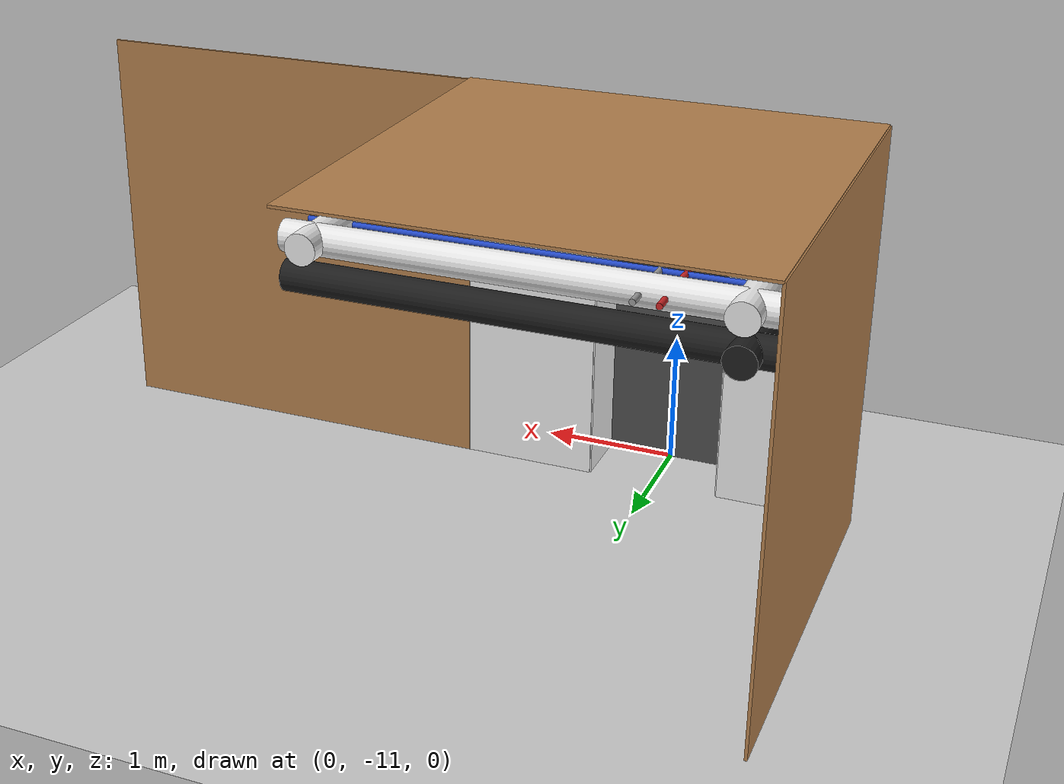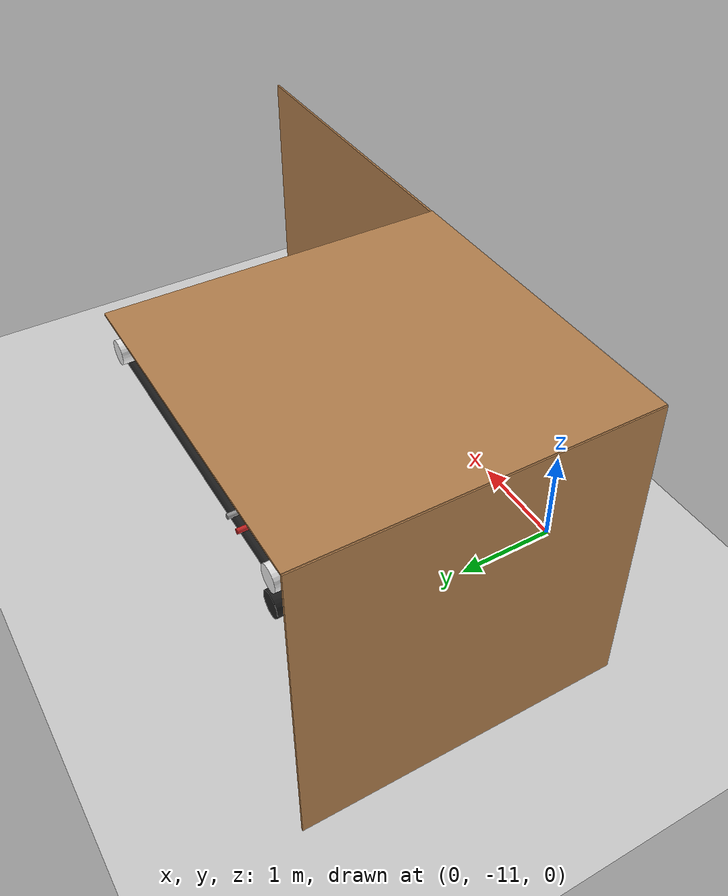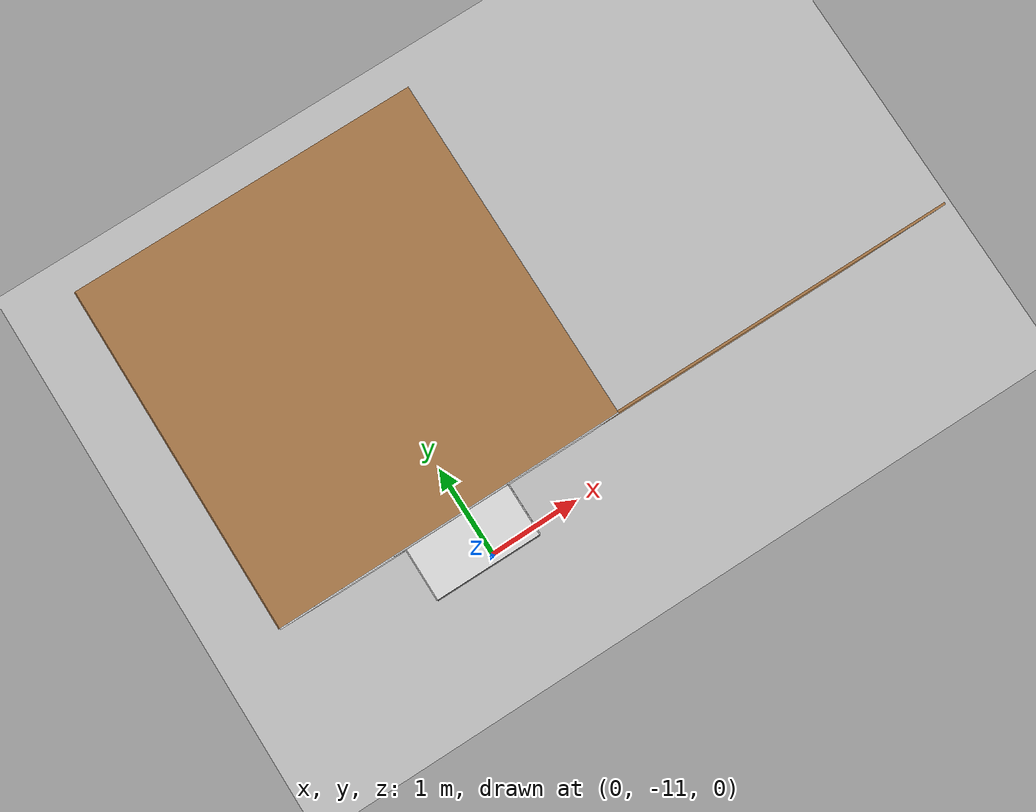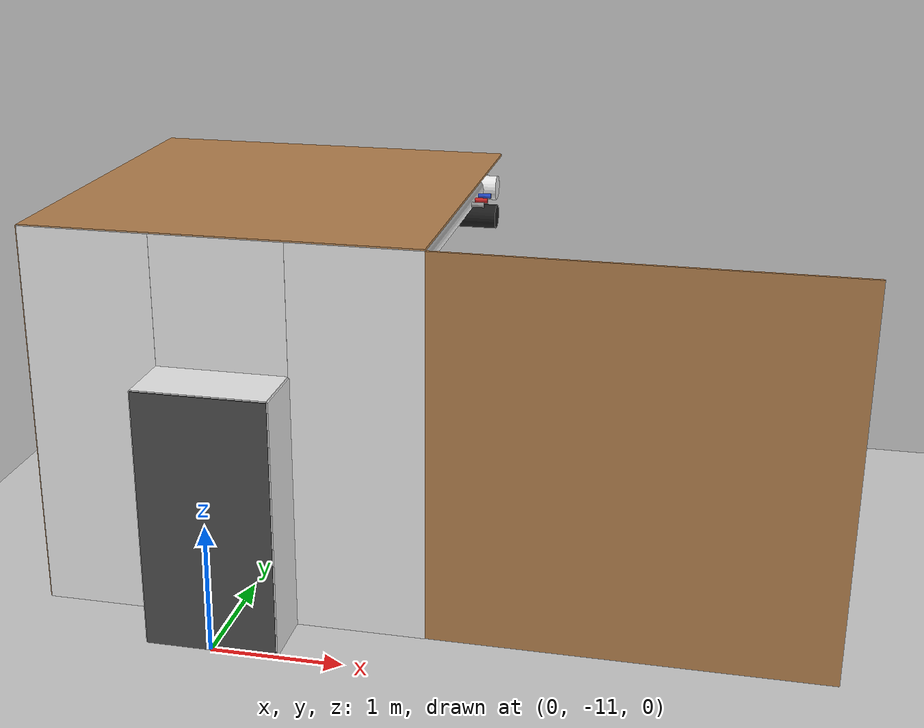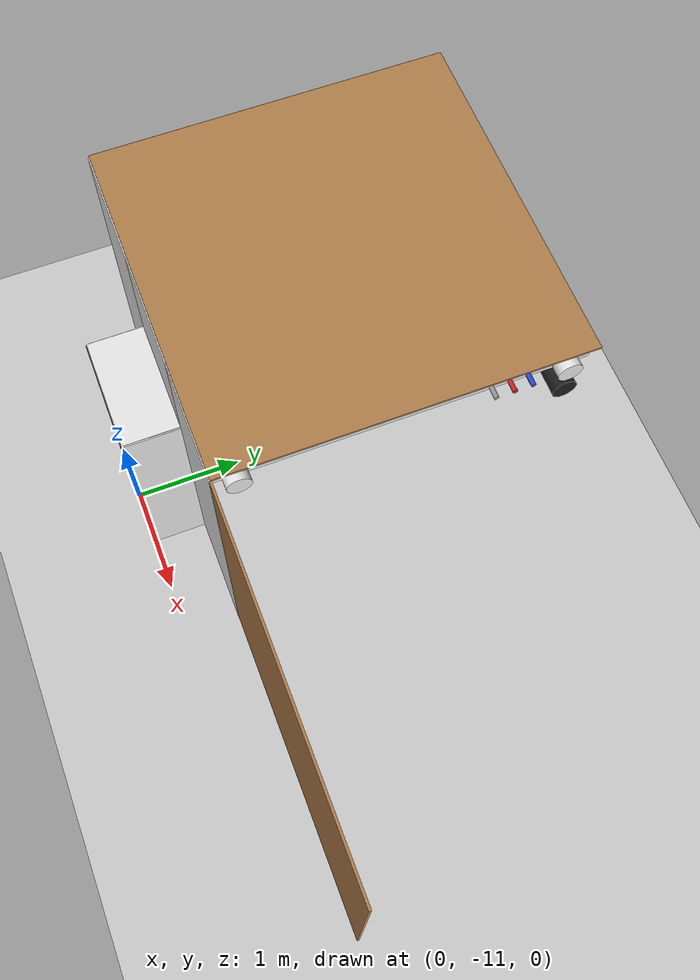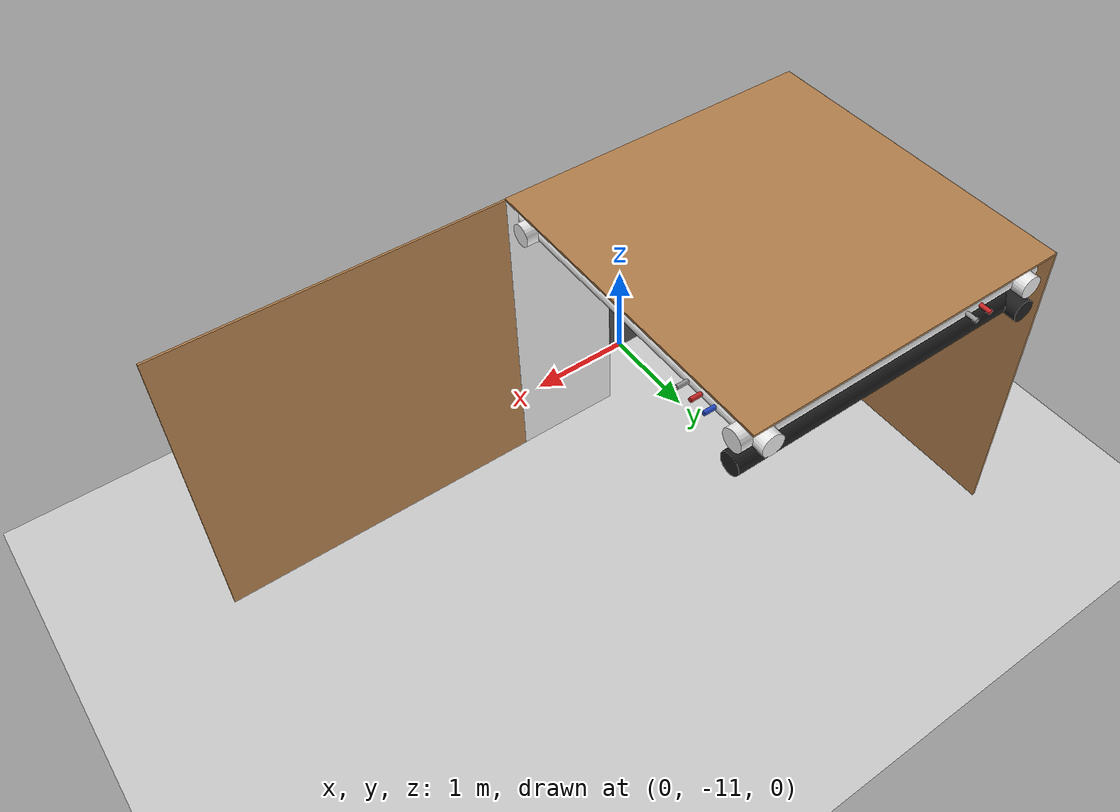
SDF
<sdf version="1.6">
 <world name="default">
  <model name="ground_plane">
   <static>1</static>
   <link name="link">
    <collision name="collision">
     <geometry><plane><normal>0 0 1</normal><size>200 200</size></plane></geometry>
     <surface><friction><ode><mu>100</mu><mu2>50</mu2></ode></friction></surface>
    </collision>
    <visual name="visual">
     <cast_shadows>0</cast_shadows>
     <geometry><plane><normal>0 0 1</normal><size>200 200</size></plane></geometry>
     <material>
      <script><uri>file://media/materials/scripts/gazebo.material</uri><name>Gazebo/Grey</name></script>
     </material>
    </visual>
   </link>
  </model>
  <model name="wall_front_1_-3_0_2">
   <static>1</static>
   <pose>3.0 -10.5 1.5 0.0 0.0 3.14</pose>
   <link name="link">
    <collision name="collision"><geometry><box><size>3 0.02 3</size></box></geometry></collision>
    <visual name="visual">
     <material>
      <script><name>Gazebo/Wood</name><uri>file://media/materials/scripts/gazebo.material</uri></script>
     </material>
     <geometry><box><size>3 0.02 3</size></box></geometry>
    </visual>
   </link>
  </model>
  <model name="wall_front_0_-3_0_2">
   <static>1</static>
   <pose>-1.5 -9.0 1.5 0.0 0.0 1.57</pose>
   <link name="link">
    <collision name="collision"><geometry><box><size>3 0.02 3</size></box></geometry></collision>
    <visual name="visual">
     <material>
      <script><name>Gazebo/Wood</name><uri>file://media/materials/scripts/gazebo.material</uri></script>
     </material>
     <geometry><box><size>3 0.02 3</size></box></geometry>
    </visual>
   </link>
  </model>
  <model name="wall_top_0_-3_0_2">
   <static>1</static>
   <pose>0.0 -9.0 3.0 1.57 0.0 1.57</pose>
   <link name="link">
    <collision name="collision"><geometry><box><size>3 0.02 3</size></box></geometry></collision>
    <visual name="visual">
     <material>
      <script><name>Gazebo/Wood</name><uri>file://media/materials/scripts/gazebo.material</uri></script>
     </material>
     <geometry><box><size>3 0.02 3</size></box></geometry>
    </visual>
   </link>
  </model>
  <model name="white_pipe_left_0_-3_0_2">
   <static>1</static>
   <pose>0.0 -9.0 2.76 0.0 0.0 1.57</pose>
   <link name="link_0">
    <visual name="visual">
     <pose>-1.3 0 0 1.57 0 0</pose>
     <geometry><cylinder><radius>0.1</radius><length>3</length></cylinder></geometry>
     <material>
      <script><uri>file://media/materials/scripts/gazebo.material</uri><name>Gazebo/White</name></script>
     </material>
    </visual>
    <collision name="collision">
     <pose>-1.3 0 0 1.57 0 0</pose>
     <geometry><cylinder><radius>0.1</radius><length>3</length></cylinder></geometry>
    </collision>
   </link>
  </model>
  <model name="white_pipe_right_0_-3_0_2">
   <static>1</static>
   <pose>0.0 -9.0 2.76 0.0 0.0 1.57</pose>
   <link name="link_0">
    <visual name="visual">
     <pose>1.3 0 0 1.57 0 0</pose>
     <geometry><cylinder><radius>0.1</radius><length>3</length></cylinder></geometry>
     <material>
      <script><uri>file://media/materials/scripts/gazebo.material</uri><name>Gazebo/White</name></script>
     </material>
    </visual>
    <collision name="collision">
     <pose>1.3 0 0 1.57 0 0</pose>
     <geometry><cylinder><radius>0.1</radius><length>3</length></cylinder></geometry>
    </collision>
   </link>
  </model>
  <model name="black_pipe_right_0_-3_0_2">
   <static>1</static>
   <pose>0.0 -9.0 2.76 0.0 0.0 1.57</pose>
   <link name="link_0">
    <visual name="visual">
     <pose>1.3 0 -0.25 1.57 0 0</pose>
     <geometry><cylinder><radius>0.1</radius><length>3</length></cylinder></geometry>
     <material>
      <script><uri>file://media/materials/scripts/gazebo.material</uri><name>Gazebo/Black</name></script>
     </material>
    </visual>
    <collision name="collision">
     <pose>1.3 0 -0.25 1.57 0 0</pose>
     <geometry><cylinder><radius>0.1</radius><length>3</length></cylinder></geometry>
    </collision>
   </link>
  </model>
  <model name="grey_pipe_right_0_-3_0_2">
   <static>1</static>
   <pose>0.0 -9.0 2.76 0.0 0.0 1.57</pose>
   <link name="link_0">
    <visual name="visual">
     <pose>0.7 0 0 1.57 0 0</pose>
     <geometry><cylinder><radius>0.02</radius><length>3</length></cylinder></geometry>
     <material>
      <script><uri>file://media/materials/scripts/gazebo.material</uri><name>Gazebo/Grey</name></script>
     </material>
    </visual>
    <collision name="collision">
     <pose>0.7 0 0 1.57 0 0</pose>
     <geometry><cylinder><radius>0.02</radius><length>3</length></cylinder></geometry>
    </collision>
   </link>
  </model>
  <model name="red_pipe_right_0_-3_0_2">
   <static>1</static>
   <pose>0.0 -9.0 2.76 0.0 0.0 1.57</pose>
   <link name="link_0">
    <visual name="visual">
     <pose>0.85 0 0 1.57 0 0</pose>
     <geometry><cylinder><radius>0.02</radius><length>3</length></cylinder></geometry>
     <material>
      <script><uri>file://media/materials/scripts/gazebo.material</uri><name>Gazebo/Red</name></script>
     </material>
    </visual>
    <collision name="collision">
     <pose>0.85 0 0 1.57 0 0</pose>
     <geometry><cylinder><radius>0.02</radius><length>3</length></cylinder></geometry>
    </collision>
   </link>
  </model>
  <model name="blue_pipe_right_0_-3_0_2">
   <static>1</static>
   <pose>0.0 -9.0 2.76 0.0 0.0 1.57</pose>
   <link name="link_0">
    <visual name="visual">
     <pose>1 0 0 1.57 0 0</pose>
     <geometry><cylinder><radius>0.02</radius><length>3</length></cylinder></geometry>
     <material>
      <script><uri>file://media/materials/scripts/gazebo.material</uri><name>Gazebo/Blue</name></script>
     </material>
    </visual>
    <collision name="collision">
     <pose>1 0 0 1.57 0 0</pose>
     <geometry><cylinder><radius>0.02</radius><length>3</length></cylinder></geometry>
    </collision>
   </link>
  </model>
  <model name="white_pipe_left_1_0_-3_0_2">
   <static>1</static>
   <pose>0.0 -9.0 2.76 0.0 0.0 3.14</pose>
   <link name="link_0">
    <visual name="visual">
     <pose>-1.3 0 0 1.57 0 0</pose>
     <geometry><cylinder><radius>0.1</radius><length>3</length></cylinder></geometry>
     <material>
      <script><uri>file://media/materials/scripts/gazebo.material</uri><name>Gazebo/White</name></script>
     </material>
    </visual>
    <collision name="collision">
     <pose>-1.3 0 0 1.57 0 0</pose>
     <geometry><cylinder><radius>0.1</radius><length>3</length></cylinder></geometry>
    </collision>
   </link>
  </model>
  <model name="white_pipe_right_1_0_-3_0_2">
   <static>1</static>
   <pose>0.0 -9.0 2.76 0.0 0.0 3.14</pose>
   <link name="link_0">
    <visual name="visual">
     <pose>1.3 0 0 1.57 0 0</pose>
     <geometry><cylinder><radius>0.1</radius><length>3</length></cylinder></geometry>
     <material>
      <script><uri>file://media/materials/scripts/gazebo.material</uri><name>Gazebo/White</name></script>
     </material>
    </visual>
    <collision name="collision">
     <pose>1.3 0 0 1.57 0 0</pose>
     <geometry><cylinder><radius>0.1</radius><length>3</length></cylinder></geometry>
    </collision>
   </link>
  </model>
  <model name="black_pipe_right_1_0_-3_0_2">
   <static>1</static>
   <pose>0.0 -9.0 2.76 0.0 0.0 3.14</pose>
   <link name="link_0">
    <visual name="visual">
     <pose>1.3 0 -0.25 1.57 0 0</pose>
     <geometry><cylinder><radius>0.1</radius><length>3</length></cylinder></geometry>
     <material>
      <script><uri>file://media/materials/scripts/gazebo.material</uri><name>Gazebo/Black</name></script>
     </material>
    </visual>
    <collision name="collision">
     <pose>1.3 0 -0.25 1.57 0 0</pose>
     <geometry><cylinder><radius>0.1</radius><length>3</length></cylinder></geometry>
    </collision>
   </link>
  </model>
  <model name="grey_pipe_right_1_0_-3_0_2">
   <static>1</static>
   <pose>0.0 -9.0 2.76 0.0 0.0 3.14</pose>
   <link name="link_0">
    <visual name="visual">
     <pose>0.7 0 0 1.57 0 0</pose>
     <geometry><cylinder><radius>0.02</radius><length>3</length></cylinder></geometry>
     <material>
      <script><uri>file://media/materials/scripts/gazebo.material</uri><name>Gazebo/Grey</name></script>
     </material>
    </visual>
    <collision name="collision">
     <pose>0.7 0 0 1.57 0 0</pose>
     <geometry><cylinder><radius>0.02</radius><length>3</length></cylinder></geometry>
    </collision>
   </link>
  </model>
  <model name="red_pipe_right_1_0_-3_0_2">
   <static>1</static>
   <pose>0.0 -9.0 2.76 0.0 0.0 3.14</pose>
   <link name="link_0">
    <visual name="visual">
     <pose>0.85 0 0 1.57 0 0</pose>
     <geometry><cylinder><radius>0.02</radius><length>3</length></cylinder></geometry>
     <material>
      <script><uri>file://media/materials/scripts/gazebo.material</uri><name>Gazebo/Red</name></script>
     </material>
    </visual>
    <collision name="collision">
     <pose>0.85 0 0 1.57 0 0</pose>
     <geometry><cylinder><radius>0.02</radius><length>3</length></cylinder></geometry>
    </collision>
   </link>
  </model>
  <model name="wall_left_front_left_0_-3_0_2">
   <static>1</static>
   <pose>-1.0 -10.5 1.5 0.0 0.0 3.14</pose>
   <link name="link">
    <collision name="collision"><geometry><box><size>1.0 0.02 3</size></box></geometry></collision>
    <visual name="visual">
     <material>
      <script><name>Gazebo/White</name><uri>file://media/materials/scripts/gazebo.material</uri></script>
     </material>
     <geometry><box><size>1.0 0.02 3</size></box></geometry>
    </visual>
   </link>
  </model>
  <model name="wall_left_front_right_0_-3_0_2">
   <static>1</static>
   <pose>1.0 -10.5 1.5 0.0 0.0 3.14</pose>
   <link name="link">
    <collision name="collision"><geometry><box><size>1.0 0.02 3</size></box></geometry></collision>
    <visual name="visual">
     <material>
      <script><name>Gazebo/White</name><uri>file://media/materials/scripts/gazebo.material</uri></script>
     </material>
     <geometry><box><size>1.0 0.02 3</size></box></geometry>
    </visual>
   </link>
  </model>
  <model name="wall_left_front_up_0_-3_0_2">
   <static>1</static>
   <pose>0.0 -10.5 2.5 0.0 0.0 3.14</pose>
   <link name="link">
    <collision name="collision"><geometry><box><size>1.0 0.02 1</size></box></geometry></collision>
    <visual name="visual">
     <material>
      <script><name>Gazebo/White</name><uri>file://media/materials/scripts/gazebo.material</uri></script>
     </material>
     <geometry><box><size>1.0 0.02 1</size></box></geometry>
    </visual>
   </link>
  </model>
  <model name="wall_left_inside_back_0_-3_0_2">
   <static>1</static>
   <pose>0.0 -11.0 1.0 0.0 0.0 3.14</pose>
   <link name="link">
    <collision name="collision"><geometry><box><size>1 0.02 2</size></box></geometry></collision>
    <visual name="visual">
     <material>
      <script><name>Gazebo/DarkGrey</name><uri>file://media/materials/scripts/gazebo.material</uri></script>
     </material>
     <geometry><box><size>1 0.02 2</size></box></geometry>
    </visual>
   </link>
  </model>
  <model name="wall_left_inside_left_0_-3_0_2">
   <static>1</static>
   <pose>-0.5 -10.75 1.0 0.0 0.0 1.57</pose>
   <link name="link">
    <collision name="collision"><geometry><box><size>0.5 0.02 2</size></box></geometry></collision>
    <visual name="visual">
     <material>
      <script><name>Gazebo/White</name><uri>file://media/materials/scripts/gazebo.material</uri></script>
     </material>
     <geometry><box><size>0.5 0.02 2</size></box></geometry>
    </visual>
   </link>
  </model>
  <model name="wall_left_inside_right_0_-3_0_2">
   <static>1</static>
   <pose>0.5 -10.75 1.0 0.0 0.0 1.57</pose>
   <link name="link">
    <collision name="collision"><geometry><box><size>0.5 0.02 2</size></box></geometry></collision>
    <visual name="visual">
     <material>
      <script><name>Gazebo/White</name><uri>file://media/materials/scripts/gazebo.material</uri></script>
     </material>
     <geometry><box><size>0.5 0.02 2</size></box></geometry>
    </visual>
   </link>
  </model>
  <model name="wall_left_inside_top_0_-3_0_2">
   <static>1</static>
   <pose>0.0 -10.75 2.0 1.57 0.0 3.14</pose>
   <link name="link">
    <collision name="collision"><geometry><box><size>1 0.02 0.5</size></box></geometry></collision>
    <visual name="visual">
     <material>
      <script><name>Gazebo/White</name><uri>file://media/materials/scripts/gazebo.material</uri></script>
     </material>
     <geometry><box><size>1 0.02 0.5</size></box></geometry>
    </visual>
   </link>
  </model>
 </world>
</sdf>
